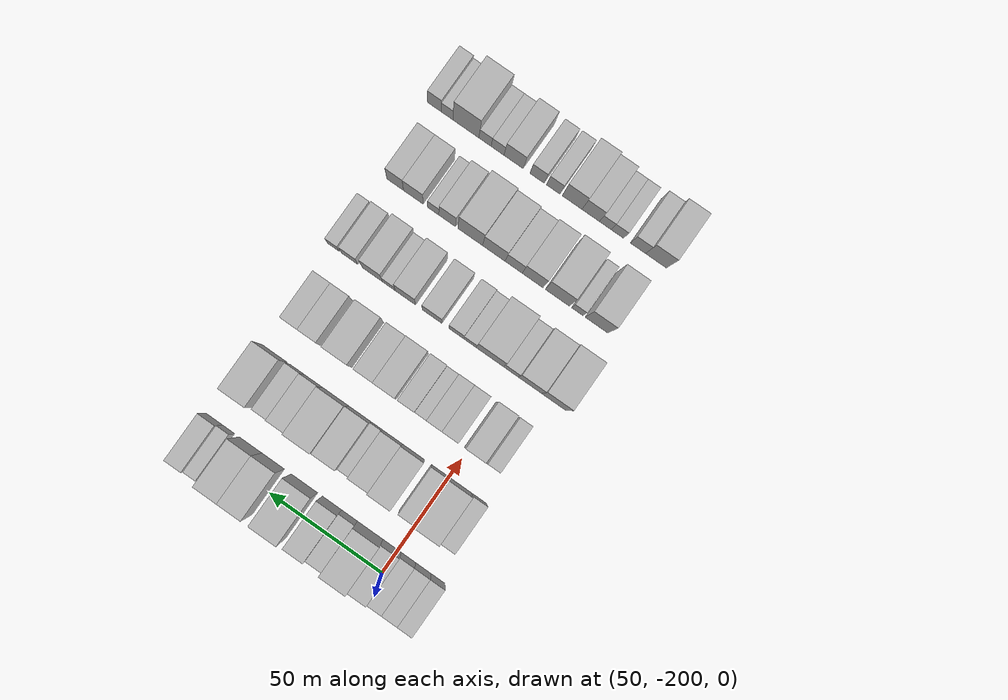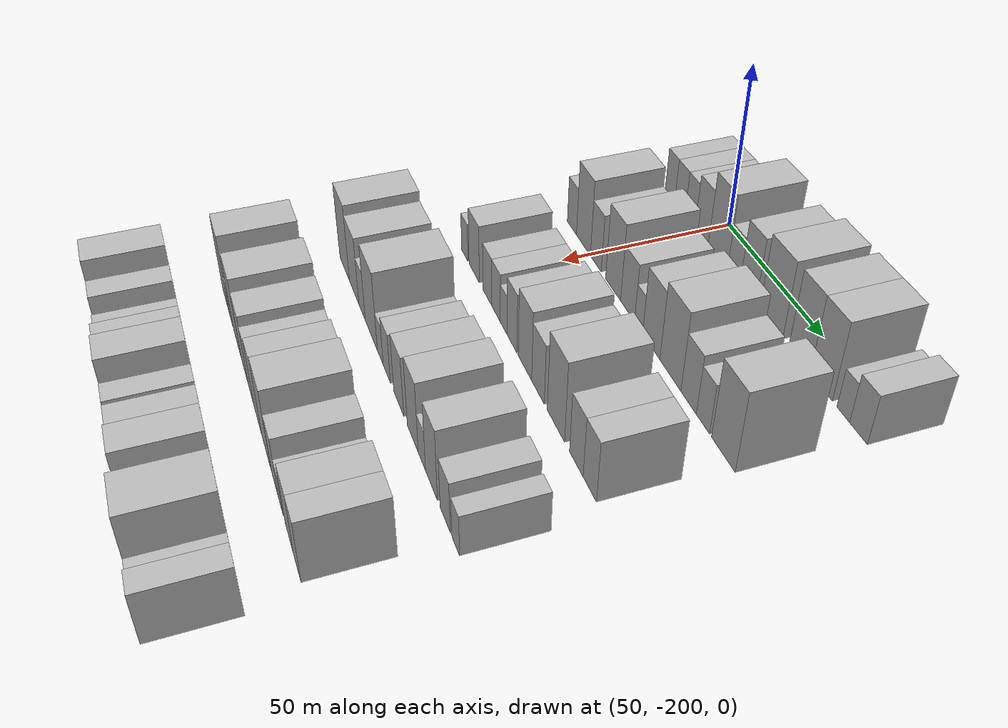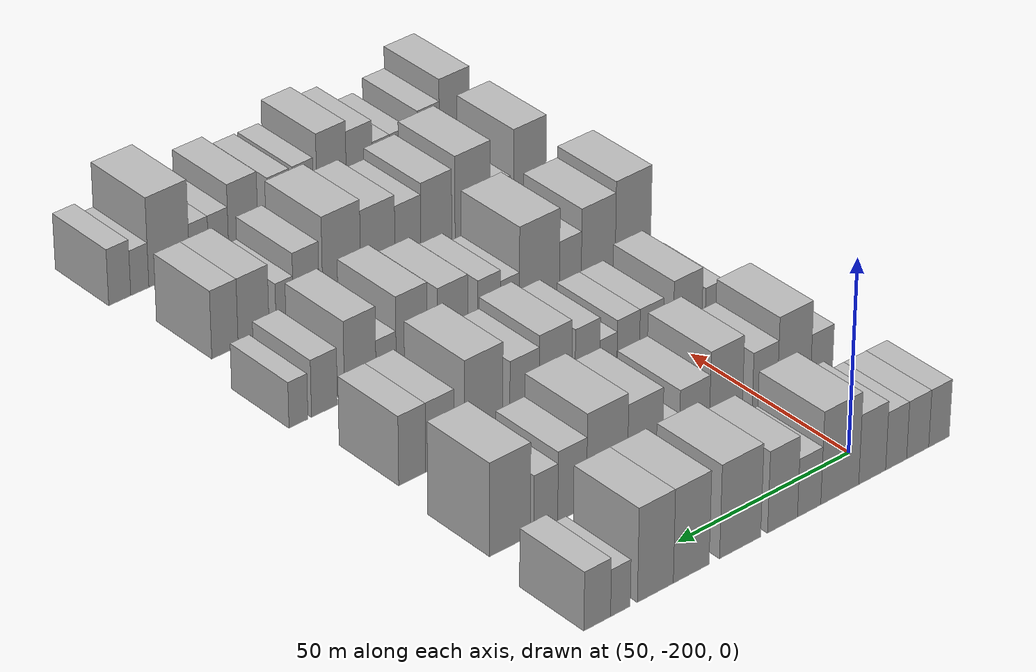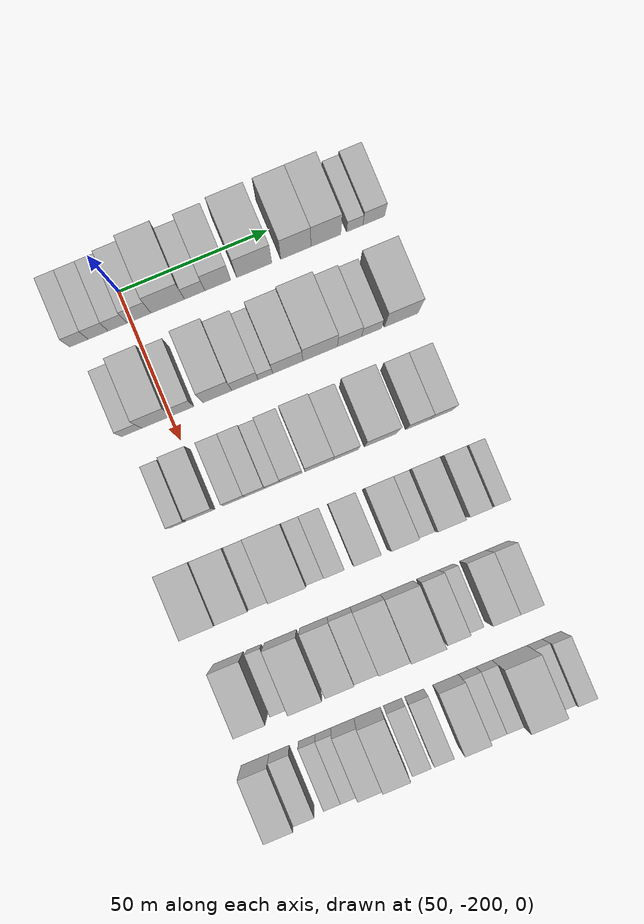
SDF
<sdf version="1.6">
 <world name="default">
  <model name="building_35">
   <static>1</static>
   <pose>50.0000 -217.4866 0 0.000000 0.000000 0.000000</pose>
   <link name="link">
    <pose>0 0 7.50 0 0 0</pose>
    <collision name="collision"><geometry><box><size>20.0000 6.2582 15.0000</size></box></geometry></collision>
    <visual name="visual">
     <cast_shadows>0</cast_shadows>
     <geometry><box><size>20.0000 6.2582 15.0000</size></box></geometry>
     <material>
      <script>
       <uri>model://HANNAS_wall/materials/scripts</uri>
       <uri>model://HANNAS_wall/materials/textures</uri>
       <name>vrc/HANNAS_wall</name>
      </script>
     </material>
    </visual>
   </link>
  </model>
  <model name="building_36">
   <static>1</static>
   <pose>50.0000 -211.0041 0 0.000000 0.000000 0.000000</pose>
   <link name="link">
    <pose>0 0 7.50 0 0 0</pose>
    <collision name="collision"><geometry><box><size>20.0000 6.7070 15.0000</size></box></geometry></collision>
    <visual name="visual">
     <cast_shadows>0</cast_shadows>
     <geometry><box><size>20.0000 6.7070 15.0000</size></box></geometry>
     <material>
      <script>
       <uri>model://HANNAS_wall/materials/scripts</uri>
       <uri>model://HANNAS_wall/materials/textures</uri>
       <name>vrc/HANNAS_wall</name>
      </script>
     </material>
    </visual>
   </link>
  </model>
  <model name="building_37">
   <static>1</static>
   <pose>50.0000 -204.4825 0 0.000000 0.000000 0.000000</pose>
   <link name="link">
    <pose>0 0 7.50 0 0 0</pose>
    <collision name="collision"><geometry><box><size>20.0000 6.3362 15.0000</size></box></geometry></collision>
    <visual name="visual">
     <cast_shadows>0</cast_shadows>
     <geometry><box><size>20.0000 6.3362 15.0000</size></box></geometry>
     <material>
      <script>
       <uri>model://HANNAS_wall/materials/scripts</uri>
       <uri>model://HANNAS_wall/materials/textures</uri>
       <name>vrc/HANNAS_wall</name>
      </script>
     </material>
    </visual>
   </link>
  </model>
  <model name="building_38">
   <static>1</static>
   <pose>50.0000 -197.2832 0 0.000000 0.000000 0.000000</pose>
   <link name="link">
    <pose>0 0 9.00 0 0 0</pose>
    <collision name="collision"><geometry><box><size>20.0000 8.0623 18.0000</size></box></geometry></collision>
    <visual name="visual">
     <cast_shadows>0</cast_shadows>
     <geometry><box><size>20.0000 8.0623 18.0000</size></box></geometry>
     <material>
      <script>
       <uri>model://HANNAS_wall/materials/scripts</uri>
       <uri>model://HANNAS_wall/materials/textures</uri>
       <name>vrc/HANNAS_wall</name>
      </script>
     </material>
    </visual>
   </link>
  </model>
  <model name="building_39">
   <static>1</static>
   <pose>50.0000 -187.6248 0 0.000000 0.000000 0.000000</pose>
   <link name="link">
    <pose>0 0 12.00 0 0 0</pose>
    <collision name="collision"><geometry><box><size>20.0000 11.2545 24.0000</size></box></geometry></collision>
    <visual name="visual">
     <cast_shadows>0</cast_shadows>
     <geometry><box><size>20.0000 11.2545 24.0000</size></box></geometry>
     <material>
      <script>
       <uri>model://HANNAS_wall/materials/scripts</uri>
       <uri>model://HANNAS_wall/materials/textures</uri>
       <name>vrc/HANNAS_wall</name>
      </script>
     </material>
    </visual>
   </link>
  </model>
  <model name="building_40">
   <static>1</static>
   <pose>50.0000 -178.5702 0 0.000000 0.000000 0.000000</pose>
   <link name="link">
    <pose>0 0 7.50 0 0 0</pose>
    <collision name="collision"><geometry><box><size>20.0000 6.8547 15.0000</size></box></geometry></collision>
    <visual name="visual">
     <cast_shadows>0</cast_shadows>
     <geometry><box><size>20.0000 6.8547 15.0000</size></box></geometry>
     <material>
      <script>
       <uri>model://HANNAS_wall/materials/scripts</uri>
       <uri>model://HANNAS_wall/materials/textures</uri>
       <name>vrc/HANNAS_wall</name>
      </script>
     </material>
    </visual>
   </link>
  </model>
  <model name="building_41">
   <static>1</static>
   <pose>50.0000 -170.7903 0 0.000000 0.000000 0.000000</pose>
   <link name="link">
    <pose>0 0 10.50 0 0 0</pose>
    <collision name="collision"><geometry><box><size>20.0000 8.7051 21.0000</size></box></geometry></collision>
    <visual name="visual">
     <cast_shadows>0</cast_shadows>
     <geometry><box><size>20.0000 8.7051 21.0000</size></box></geometry>
     <material>
      <script>
       <uri>model://HANNAS_wall/materials/scripts</uri>
       <uri>model://HANNAS_wall/materials/textures</uri>
       <name>vrc/HANNAS_wall</name>
      </script>
     </material>
    </visual>
   </link>
  </model>
  <model name="building_42">
   <static>1</static>
   <pose>50.0000 -158.5250 0 0.000000 0.000000 0.000000</pose>
   <link name="link">
    <pose>0 0 12.00 0 0 0</pose>
    <collision name="collision"><geometry><box><size>20.0000 11.8255 24.0000</size></box></geometry></collision>
    <visual name="visual">
     <cast_shadows>0</cast_shadows>
     <geometry><box><size>20.0000 11.8255 24.0000</size></box></geometry>
     <material>
      <script>
       <uri>model://HANNAS_wall/materials/scripts</uri>
       <uri>model://HANNAS_wall/materials/textures</uri>
       <name>vrc/HANNAS_wall</name>
      </script>
     </material>
    </visual>
   </link>
  </model>
  <model name="building_43">
   <static>1</static>
   <pose>50.0000 -144.5448 0 0.000000 0.000000 0.000000</pose>
   <link name="link">
    <pose>0 0 12.00 0 0 0</pose>
    <collision name="collision"><geometry><box><size>20.0000 10.1348 24.0000</size></box></geometry></collision>
    <visual name="visual">
     <cast_shadows>0</cast_shadows>
     <geometry><box><size>20.0000 10.1348 24.0000</size></box></geometry>
     <material>
      <script>
       <uri>model://HANNAS_wall/materials/scripts</uri>
       <uri>model://HANNAS_wall/materials/textures</uri>
       <name>vrc/HANNAS_wall</name>
      </script>
     </material>
    </visual>
   </link>
  </model>
  <model name="building_44">
   <static>1</static>
   <pose>50.0000 -134.4413 0 0.000000 0.000000 0.000000</pose>
   <link name="link">
    <pose>0 0 12.00 0 0 0</pose>
    <collision name="collision"><geometry><box><size>20.0000 10.0723 24.0000</size></box></geometry></collision>
    <visual name="visual">
     <cast_shadows>0</cast_shadows>
     <geometry><box><size>20.0000 10.0723 24.0000</size></box></geometry>
     <material>
      <script>
       <uri>model://HANNAS_wall/materials/scripts</uri>
       <uri>model://HANNAS_wall/materials/textures</uri>
       <name>vrc/HANNAS_wall</name>
      </script>
     </material>
    </visual>
   </link>
  </model>
  <model name="building_45">
   <static>1</static>
   <pose>50.0000 -124.6807 0 0.000000 0.000000 0.000000</pose>
   <link name="link">
    <pose>0 0 6.00 0 0 0</pose>
    <collision name="collision"><geometry><box><size>20.0000 5.4487 12.0000</size></box></geometry></collision>
    <visual name="visual">
     <cast_shadows>0</cast_shadows>
     <geometry><box><size>20.0000 5.4487 12.0000</size></box></geometry>
     <material>
      <script>
       <uri>model://HANNAS_wall/materials/scripts</uri>
       <uri>model://HANNAS_wall/materials/textures</uri>
       <name>vrc/HANNAS_wall</name>
      </script>
     </material>
    </visual>
   </link>
  </model>
  <model name="building_46">
   <static>1</static>
   <pose>50.0000 -118.2756 0 0.000000 0.000000 0.000000</pose>
   <link name="link">
    <pose>0 0 7.50 0 0 0</pose>
    <collision name="collision"><geometry><box><size>20.0000 7.3616 15.0000</size></box></geometry></collision>
    <visual name="visual">
     <cast_shadows>0</cast_shadows>
     <geometry><box><size>20.0000 7.3616 15.0000</size></box></geometry>
     <material>
      <script>
       <uri>model://HANNAS_wall/materials/scripts</uri>
       <uri>model://HANNAS_wall/materials/textures</uri>
       <name>vrc/HANNAS_wall</name>
      </script>
     </material>
    </visual>
   </link>
  </model>
  <model name="building_156">
   <static>1</static>
   <pose>82.0000 -213.0243 0 0.000000 0.000000 0.000000</pose>
   <link name="link">
    <pose>0 0 7.50 0 0 0</pose>
    <collision name="collision"><geometry><box><size>20.0000 6.7097 15.0000</size></box></geometry></collision>
    <visual name="visual">
     <cast_shadows>0</cast_shadows>
     <geometry><box><size>20.0000 6.7097 15.0000</size></box></geometry>
     <material>
      <script>
       <uri>model://HANNAS_wall/materials/scripts</uri>
       <uri>model://HANNAS_wall/materials/textures</uri>
       <name>vrc/HANNAS_wall</name>
      </script>
     </material>
    </visual>
   </link>
  </model>
  <model name="building_157">
   <static>1</static>
   <pose>82.0000 -204.6348 0 0.000000 0.000000 0.000000</pose>
   <link name="link">
    <pose>0 0 12.00 0 0 0</pose>
    <collision name="collision"><geometry><box><size>20.0000 10.0692 24.0000</size></box></geometry></collision>
    <visual name="visual">
     <cast_shadows>0</cast_shadows>
     <geometry><box><size>20.0000 10.0692 24.0000</size></box></geometry>
     <material>
      <script>
       <uri>model://HANNAS_wall/materials/scripts</uri>
       <uri>model://HANNAS_wall/materials/textures</uri>
       <name>vrc/HANNAS_wall</name>
      </script>
     </material>
    </visual>
   </link>
  </model>
  <model name="building_158">
   <static>1</static>
   <pose>82.0000 -195.8548 0 0.000000 0.000000 0.000000</pose>
   <link name="link">
    <pose>0 0 9.00 0 0 0</pose>
    <collision name="collision"><geometry><box><size>20.0000 7.4910 18.0000</size></box></geometry></collision>
    <visual name="visual">
     <cast_shadows>0</cast_shadows>
     <geometry><box><size>20.0000 7.4910 18.0000</size></box></geometry>
     <material>
      <script>
       <uri>model://HANNAS_wall/materials/scripts</uri>
       <uri>model://HANNAS_wall/materials/textures</uri>
       <name>vrc/HANNAS_wall</name>
      </script>
     </material>
    </visual>
   </link>
  </model>
  <model name="building_159">
   <static>1</static>
   <pose>82.0000 -184.2262 0 0.000000 0.000000 0.000000</pose>
   <link name="link">
    <pose>0 0 12.00 0 0 0</pose>
    <collision name="collision"><geometry><box><size>20.0000 9.7662 24.0000</size></box></geometry></collision>
    <visual name="visual">
     <cast_shadows>0</cast_shadows>
     <geometry><box><size>20.0000 9.7662 24.0000</size></box></geometry>
     <material>
      <script>
       <uri>model://HANNAS_wall/materials/scripts</uri>
       <uri>model://HANNAS_wall/materials/textures</uri>
       <name>vrc/HANNAS_wall</name>
      </script>
     </material>
    </visual>
   </link>
  </model>
  <model name="building_160">
   <static>1</static>
   <pose>82.0000 -174.9498 0 0.000000 0.000000 0.000000</pose>
   <link name="link">
    <pose>0 0 9.00 0 0 0</pose>
    <collision name="collision"><geometry><box><size>20.0000 8.7865 18.0000</size></box></geometry></collision>
    <visual name="visual">
     <cast_shadows>0</cast_shadows>
     <geometry><box><size>20.0000 8.7865 18.0000</size></box></geometry>
     <material>
      <script>
       <uri>model://HANNAS_wall/materials/scripts</uri>
       <uri>model://HANNAS_wall/materials/textures</uri>
       <name>vrc/HANNAS_wall</name>
      </script>
     </material>
    </visual>
   </link>
  </model>
  <model name="building_161">
   <static>1</static>
   <pose>82.0000 -168.1094 0 0.000000 0.000000 0.000000</pose>
   <link name="link">
    <pose>0 0 6.00 0 0 0</pose>
    <collision name="collision"><geometry><box><size>20.0000 4.8943 12.0000</size></box></geometry></collision>
    <visual name="visual">
     <cast_shadows>0</cast_shadows>
     <geometry><box><size>20.0000 4.8943 12.0000</size></box></geometry>
     <material>
      <script>
       <uri>model://HANNAS_wall/materials/scripts</uri>
       <uri>model://HANNAS_wall/materials/textures</uri>
       <name>vrc/HANNAS_wall</name>
      </script>
     </material>
    </visual>
   </link>
  </model>
  <model name="building_162">
   <static>1</static>
   <pose>82.0000 -160.6209 0 0.000000 0.000000 0.000000</pose>
   <link name="link">
    <pose>0 0 10.50 0 0 0</pose>
    <collision name="collision"><geometry><box><size>20.0000 10.0827 21.0000</size></box></geometry></collision>
    <visual name="visual">
     <cast_shadows>0</cast_shadows>
     <geometry><box><size>20.0000 10.0827 21.0000</size></box></geometry>
     <material>
      <script>
       <uri>model://HANNAS_wall/materials/scripts</uri>
       <uri>model://HANNAS_wall/materials/textures</uri>
       <name>vrc/HANNAS_wall</name>
      </script>
     </material>
    </visual>
   </link>
  </model>
  <model name="building_163">
   <static>1</static>
   <pose>82.0000 -149.7495 0 0.000000 0.000000 0.000000</pose>
   <link name="link">
    <pose>0 0 12.00 0 0 0</pose>
    <collision name="collision"><geometry><box><size>20.0000 11.6601 24.0000</size></box></geometry></collision>
    <visual name="visual">
     <cast_shadows>0</cast_shadows>
     <geometry><box><size>20.0000 11.6601 24.0000</size></box></geometry>
     <material>
      <script>
       <uri>model://HANNAS_wall/materials/scripts</uri>
       <uri>model://HANNAS_wall/materials/textures</uri>
       <name>vrc/HANNAS_wall</name>
      </script>
     </material>
    </visual>
   </link>
  </model>
  <model name="building_164">
   <static>1</static>
   <pose>82.0000 -139.8485 0 0.000000 0.000000 0.000000</pose>
   <link name="link">
    <pose>0 0 9.00 0 0 0</pose>
    <collision name="collision"><geometry><box><size>20.0000 8.1419 18.0000</size></box></geometry></collision>
    <visual name="visual">
     <cast_shadows>0</cast_shadows>
     <geometry><box><size>20.0000 8.1419 18.0000</size></box></geometry>
     <material>
      <script>
       <uri>model://HANNAS_wall/materials/scripts</uri>
       <uri>model://HANNAS_wall/materials/textures</uri>
       <name>vrc/HANNAS_wall</name>
      </script>
     </material>
    </visual>
   </link>
  </model>
  <model name="building_165">
   <static>1</static>
   <pose>82.0000 -132.4427 0 0.000000 0.000000 0.000000</pose>
   <link name="link">
    <pose>0 0 7.50 0 0 0</pose>
    <collision name="collision"><geometry><box><size>20.0000 6.6697 15.0000</size></box></geometry></collision>
    <visual name="visual">
     <cast_shadows>0</cast_shadows>
     <geometry><box><size>20.0000 6.6697 15.0000</size></box></geometry>
     <material>
      <script>
       <uri>model://HANNAS_wall/materials/scripts</uri>
       <uri>model://HANNAS_wall/materials/textures</uri>
       <name>vrc/HANNAS_wall</name>
      </script>
     </material>
    </visual>
   </link>
  </model>
  <model name="building_166">
   <static>1</static>
   <pose>82.0000 -122.4352 0 0.000000 0.000000 0.000000</pose>
   <link name="link">
    <pose>0 0 12.00 0 0 0</pose>
    <collision name="collision"><geometry><box><size>20.0000 11.3452 24.0000</size></box></geometry></collision>
    <visual name="visual">
     <cast_shadows>0</cast_shadows>
     <geometry><box><size>20.0000 11.3452 24.0000</size></box></geometry>
     <material>
      <script>
       <uri>model://HANNAS_wall/materials/scripts</uri>
       <uri>model://HANNAS_wall/materials/textures</uri>
       <name>vrc/HANNAS_wall</name>
      </script>
     </material>
    </visual>
   </link>
  </model>
  <model name="building_271">
   <static>1</static>
   <pose>114.0000 -210.7278 0 0.000000 0.000000 0.000000</pose>
   <link name="link">
    <pose>0 0 6.00 0 0 0</pose>
    <collision name="collision"><geometry><box><size>20.0000 5.5401 12.0000</size></box></geometry></collision>
    <visual name="visual">
     <cast_shadows>0</cast_shadows>
     <geometry><box><size>20.0000 5.5401 12.0000</size></box></geometry>
     <material>
      <script>
       <uri>model://HANNAS_wall/materials/scripts</uri>
       <uri>model://HANNAS_wall/materials/textures</uri>
       <name>vrc/HANNAS_wall</name>
      </script>
     </material>
    </visual>
   </link>
  </model>
  <model name="building_272">
   <static>1</static>
   <pose>114.0000 -202.6160 0 0.000000 0.000000 0.000000</pose>
   <link name="link">
    <pose>0 0 9.00 0 0 0</pose>
    <collision name="collision"><geometry><box><size>20.0000 8.6835 18.0000</size></box></geometry></collision>
    <visual name="visual">
     <cast_shadows>0</cast_shadows>
     <geometry><box><size>20.0000 8.6835 18.0000</size></box></geometry>
     <material>
      <script>
       <uri>model://HANNAS_wall/materials/scripts</uri>
       <uri>model://HANNAS_wall/materials/textures</uri>
       <name>vrc/HANNAS_wall</name>
      </script>
     </material>
    </visual>
   </link>
  </model>
  <model name="building_273">
   <static>1</static>
   <pose>114.0000 -191.7306 0 0.000000 0.000000 0.000000</pose>
   <link name="link">
    <pose>0 0 7.50 0 0 0</pose>
    <collision name="collision"><geometry><box><size>20.0000 7.0872 15.0000</size></box></geometry></collision>
    <visual name="visual">
     <cast_shadows>0</cast_shadows>
     <geometry><box><size>20.0000 7.0872 15.0000</size></box></geometry>
     <material>
      <script>
       <uri>model://HANNAS_wall/materials/scripts</uri>
       <uri>model://HANNAS_wall/materials/textures</uri>
       <name>vrc/HANNAS_wall</name>
      </script>
     </material>
    </visual>
   </link>
  </model>
  <model name="building_274">
   <static>1</static>
   <pose>114.0000 -184.8368 0 0.000000 0.000000 0.000000</pose>
   <link name="link">
    <pose>0 0 7.50 0 0 0</pose>
    <collision name="collision"><geometry><box><size>20.0000 6.7005 15.0000</size></box></geometry></collision>
    <visual name="visual">
     <cast_shadows>0</cast_shadows>
     <geometry><box><size>20.0000 6.7005 15.0000</size></box></geometry>
     <material>
      <script>
       <uri>model://HANNAS_wall/materials/scripts</uri>
       <uri>model://HANNAS_wall/materials/textures</uri>
       <name>vrc/HANNAS_wall</name>
      </script>
     </material>
    </visual>
   </link>
  </model>
  <model name="building_275">
   <static>1</static>
   <pose>114.0000 -178.9453 0 0.000000 0.000000 0.000000</pose>
   <link name="link">
    <pose>0 0 6.00 0 0 0</pose>
    <collision name="collision"><geometry><box><size>20.0000 5.0824 12.0000</size></box></geometry></collision>
    <visual name="visual">
     <cast_shadows>0</cast_shadows>
     <geometry><box><size>20.0000 5.0824 12.0000</size></box></geometry>
     <material>
      <script>
       <uri>model://HANNAS_wall/materials/scripts</uri>
       <uri>model://HANNAS_wall/materials/textures</uri>
       <name>vrc/HANNAS_wall</name>
      </script>
     </material>
    </visual>
   </link>
  </model>
  <model name="building_276">
   <static>1</static>
   <pose>114.0000 -172.7755 0 0.000000 0.000000 0.000000</pose>
   <link name="link">
    <pose>0 0 9.00 0 0 0</pose>
    <collision name="collision"><geometry><box><size>20.0000 7.2572 18.0000</size></box></geometry></collision>
    <visual name="visual">
     <cast_shadows>0</cast_shadows>
     <geometry><box><size>20.0000 7.2572 18.0000</size></box></geometry>
     <material>
      <script>
       <uri>model://HANNAS_wall/materials/scripts</uri>
       <uri>model://HANNAS_wall/materials/textures</uri>
       <name>vrc/HANNAS_wall</name>
      </script>
     </material>
    </visual>
   </link>
  </model>
  <model name="building_277">
   <static>1</static>
   <pose>114.0000 -163.4434 0 0.000000 0.000000 0.000000</pose>
   <link name="link">
    <pose>0 0 10.50 0 0 0</pose>
    <collision name="collision"><geometry><box><size>20.0000 9.4072 21.0000</size></box></geometry></collision>
    <visual name="visual">
     <cast_shadows>0</cast_shadows>
     <geometry><box><size>20.0000 9.4072 21.0000</size></box></geometry>
     <material>
      <script>
       <uri>model://HANNAS_wall/materials/scripts</uri>
       <uri>model://HANNAS_wall/materials/textures</uri>
       <name>vrc/HANNAS_wall</name>
      </script>
     </material>
    </visual>
   </link>
  </model>
  <model name="building_278">
   <static>1</static>
   <pose>114.0000 -154.5043 0 0.000000 0.000000 0.000000</pose>
   <link name="link">
    <pose>0 0 9.00 0 0 0</pose>
    <collision name="collision"><geometry><box><size>20.0000 8.4709 18.0000</size></box></geometry></collision>
    <visual name="visual">
     <cast_shadows>0</cast_shadows>
     <geometry><box><size>20.0000 8.4709 18.0000</size></box></geometry>
     <material>
      <script>
       <uri>model://HANNAS_wall/materials/scripts</uri>
       <uri>model://HANNAS_wall/materials/textures</uri>
       <name>vrc/HANNAS_wall</name>
      </script>
     </material>
    </visual>
   </link>
  </model>
  <model name="building_279">
   <static>1</static>
   <pose>114.0000 -142.8248 0 0.000000 0.000000 0.000000</pose>
   <link name="link">
    <pose>0 0 12.00 0 0 0</pose>
    <collision name="collision"><geometry><box><size>20.0000 10.8882 24.0000</size></box></geometry></collision>
    <visual name="visual">
     <cast_shadows>0</cast_shadows>
     <geometry><box><size>20.0000 10.8882 24.0000</size></box></geometry>
     <material>
      <script>
       <uri>model://HANNAS_wall/materials/scripts</uri>
       <uri>model://HANNAS_wall/materials/textures</uri>
       <name>vrc/HANNAS_wall</name>
      </script>
     </material>
    </visual>
   </link>
  </model>
  <model name="building_280">
   <static>1</static>
   <pose>114.0000 -130.3665 0 0.000000 0.000000 0.000000</pose>
   <link name="link">
    <pose>0 0 9.00 0 0 0</pose>
    <collision name="collision"><geometry><box><size>20.0000 8.0283 18.0000</size></box></geometry></collision>
    <visual name="visual">
     <cast_shadows>0</cast_shadows>
     <geometry><box><size>20.0000 8.0283 18.0000</size></box></geometry>
     <material>
      <script>
       <uri>model://HANNAS_wall/materials/scripts</uri>
       <uri>model://HANNAS_wall/materials/textures</uri>
       <name>vrc/HANNAS_wall</name>
      </script>
     </material>
    </visual>
   </link>
  </model>
  <model name="building_281">
   <static>1</static>
   <pose>114.0000 -122.5780 0 0.000000 0.000000 0.000000</pose>
   <link name="link">
    <pose>0 0 9.00 0 0 0</pose>
    <collision name="collision"><geometry><box><size>20.0000 7.5489 18.0000</size></box></geometry></collision>
    <visual name="visual">
     <cast_shadows>0</cast_shadows>
     <geometry><box><size>20.0000 7.5489 18.0000</size></box></geometry>
     <material>
      <script>
       <uri>model://HANNAS_wall/materials/scripts</uri>
       <uri>model://HANNAS_wall/materials/textures</uri>
       <name>vrc/HANNAS_wall</name>
      </script>
     </material>
    </visual>
   </link>
  </model>
  <model name="building_391">
   <static>1</static>
   <pose>146.0000 -215.3530 0 0.000000 0.000000 0.000000</pose>
   <link name="link">
    <pose>0 0 12.00 0 0 0</pose>
    <collision name="collision"><geometry><box><size>20.0000 10.8899 24.0000</size></box></geometry></collision>
    <visual name="visual">
     <cast_shadows>0</cast_shadows>
     <geometry><box><size>20.0000 10.8899 24.0000</size></box></geometry>
     <material>
      <script>
       <uri>model://HANNAS_wall/materials/scripts</uri>
       <uri>model://HANNAS_wall/materials/textures</uri>
       <name>vrc/HANNAS_wall</name>
      </script>
     </material>
    </visual>
   </link>
  </model>
  <model name="building_392">
   <static>1</static>
   <pose>146.0000 -204.7414 0 0.000000 0.000000 0.000000</pose>
   <link name="link">
    <pose>0 0 10.50 0 0 0</pose>
    <collision name="collision"><geometry><box><size>20.0000 10.3334 21.0000</size></box></geometry></collision>
    <visual name="visual">
     <cast_shadows>0</cast_shadows>
     <geometry><box><size>20.0000 10.3334 21.0000</size></box></geometry>
     <material>
      <script>
       <uri>model://HANNAS_wall/materials/scripts</uri>
       <uri>model://HANNAS_wall/materials/textures</uri>
       <name>vrc/HANNAS_wall</name>
      </script>
     </material>
    </visual>
   </link>
  </model>
  <model name="building_393">
   <static>1</static>
   <pose>146.0000 -196.2907 0 0.000000 0.000000 0.000000</pose>
   <link name="link">
    <pose>0 0 7.50 0 0 0</pose>
    <collision name="collision"><geometry><box><size>20.0000 6.5680 15.0000</size></box></geometry></collision>
    <visual name="visual">
     <cast_shadows>0</cast_shadows>
     <geometry><box><size>20.0000 6.5680 15.0000</size></box></geometry>
     <material>
      <script>
       <uri>model://HANNAS_wall/materials/scripts</uri>
       <uri>model://HANNAS_wall/materials/textures</uri>
       <name>vrc/HANNAS_wall</name>
      </script>
     </material>
    </visual>
   </link>
  </model>
  <model name="building_394">
   <static>1</static>
   <pose>146.0000 -187.0094 0 0.000000 0.000000 0.000000</pose>
   <link name="link">
    <pose>0 0 12.00 0 0 0</pose>
    <collision name="collision"><geometry><box><size>20.0000 11.9946 24.0000</size></box></geometry></collision>
    <visual name="visual">
     <cast_shadows>0</cast_shadows>
     <geometry><box><size>20.0000 11.9946 24.0000</size></box></geometry>
     <material>
      <script>
       <uri>model://HANNAS_wall/materials/scripts</uri>
       <uri>model://HANNAS_wall/materials/textures</uri>
       <name>vrc/HANNAS_wall</name>
      </script>
     </material>
    </visual>
   </link>
  </model>
  <model name="building_395">
   <static>1</static>
   <pose>146.0000 -178.2110 0 0.000000 0.000000 0.000000</pose>
   <link name="link">
    <pose>0 0 6.00 0 0 0</pose>
    <collision name="collision"><geometry><box><size>20.0000 5.6023 12.0000</size></box></geometry></collision>
    <visual name="visual">
     <cast_shadows>0</cast_shadows>
     <geometry><box><size>20.0000 5.6023 12.0000</size></box></geometry>
     <material>
      <script>
       <uri>model://HANNAS_wall/materials/scripts</uri>
       <uri>model://HANNAS_wall/materials/textures</uri>
       <name>vrc/HANNAS_wall</name>
      </script>
     </material>
    </visual>
   </link>
  </model>
  <model name="building_396">
   <static>1</static>
   <pose>146.0000 -172.0762 0 0.000000 0.000000 0.000000</pose>
   <link name="link">
    <pose>0 0 7.50 0 0 0</pose>
    <collision name="collision"><geometry><box><size>20.0000 6.6673 15.0000</size></box></geometry></collision>
    <visual name="visual">
     <cast_shadows>0</cast_shadows>
     <geometry><box><size>20.0000 6.6673 15.0000</size></box></geometry>
     <material>
      <script>
       <uri>model://HANNAS_wall/materials/scripts</uri>
       <uri>model://HANNAS_wall/materials/textures</uri>
       <name>vrc/HANNAS_wall</name>
      </script>
     </material>
    </visual>
   </link>
  </model>
  <model name="building_397">
   <static>1</static>
   <pose>146.0000 -161.3715 0 0.000000 0.000000 0.000000</pose>
   <link name="link">
    <pose>0 0 9.00 0 0 0</pose>
    <collision name="collision"><geometry><box><size>20.0000 8.7420 18.0000</size></box></geometry></collision>
    <visual name="visual">
     <cast_shadows>0</cast_shadows>
     <geometry><box><size>20.0000 8.7420 18.0000</size></box></geometry>
     <material>
      <script>
       <uri>model://HANNAS_wall/materials/scripts</uri>
       <uri>model://HANNAS_wall/materials/textures</uri>
       <name>vrc/HANNAS_wall</name>
      </script>
     </material>
    </visual>
   </link>
  </model>
  <model name="building_398">
   <static>1</static>
   <pose>146.0000 -149.5007 0 0.000000 0.000000 0.000000</pose>
   <link name="link">
    <pose>0 0 10.50 0 0 0</pose>
    <collision name="collision"><geometry><box><size>20.0000 8.9995 21.0000</size></box></geometry></collision>
    <visual name="visual">
     <cast_shadows>0</cast_shadows>
     <geometry><box><size>20.0000 8.9995 21.0000</size></box></geometry>
     <material>
      <script>
       <uri>model://HANNAS_wall/materials/scripts</uri>
       <uri>model://HANNAS_wall/materials/textures</uri>
       <name>vrc/HANNAS_wall</name>
      </script>
     </material>
    </visual>
   </link>
  </model>
  <model name="building_399">
   <static>1</static>
   <pose>146.0000 -142.1127 0 0.000000 0.000000 0.000000</pose>
   <link name="link">
    <pose>0 0 6.00 0 0 0</pose>
    <collision name="collision"><geometry><box><size>20.0000 5.7765 12.0000</size></box></geometry></collision>
    <visual name="visual">
     <cast_shadows>0</cast_shadows>
     <geometry><box><size>20.0000 5.7765 12.0000</size></box></geometry>
     <material>
      <script>
       <uri>model://HANNAS_wall/materials/scripts</uri>
       <uri>model://HANNAS_wall/materials/textures</uri>
       <name>vrc/HANNAS_wall</name>
      </script>
     </material>
    </visual>
   </link>
  </model>
  <model name="building_400">
   <static>1</static>
   <pose>146.0000 -134.7235 0 0.000000 0.000000 0.000000</pose>
   <link name="link">
    <pose>0 0 10.50 0 0 0</pose>
    <collision name="collision"><geometry><box><size>20.0000 9.0020 21.0000</size></box></geometry></collision>
    <visual name="visual">
     <cast_shadows>0</cast_shadows>
     <geometry><box><size>20.0000 9.0020 21.0000</size></box></geometry>
     <material>
      <script>
       <uri>model://HANNAS_wall/materials/scripts</uri>
       <uri>model://HANNAS_wall/materials/textures</uri>
       <name>vrc/HANNAS_wall</name>
      </script>
     </material>
    </visual>
   </link>
  </model>
  <model name="building_401">
   <static>1</static>
   <pose>146.0000 -124.5588 0 0.000000 0.000000 0.000000</pose>
   <link name="link">
    <pose>0 0 7.50 0 0 0</pose>
    <collision name="collision"><geometry><box><size>20.0000 7.3274 15.0000</size></box></geometry></collision>
    <visual name="visual">
     <cast_shadows>0</cast_shadows>
     <geometry><box><size>20.0000 7.3274 15.0000</size></box></geometry>
     <material>
      <script>
       <uri>model://HANNAS_wall/materials/scripts</uri>
       <uri>model://HANNAS_wall/materials/textures</uri>
       <name>vrc/HANNAS_wall</name>
      </script>
     </material>
    </visual>
   </link>
  </model>
  <model name="building_402">
   <static>1</static>
   <pose>146.0000 -117.2465 0 0.000000 0.000000 0.000000</pose>
   <link name="link">
    <pose>0 0 6.00 0 0 0</pose>
    <collision name="collision"><geometry><box><size>20.0000 5.2971 12.0000</size></box></geometry></collision>
    <visual name="visual">
     <cast_shadows>0</cast_shadows>
     <geometry><box><size>20.0000 5.2971 12.0000</size></box></geometry>
     <material>
      <script>
       <uri>model://HANNAS_wall/materials/scripts</uri>
       <uri>model://HANNAS_wall/materials/textures</uri>
       <name>vrc/HANNAS_wall</name>
      </script>
     </material>
    </visual>
   </link>
  </model>
  <model name="building_513">
   <static>1</static>
   <pose>178.0000 -212.1692 0 0.000000 0.000000 0.000000</pose>
   <link name="link">
    <pose>0 0 12.00 0 0 0</pose>
    <collision name="collision"><geometry><box><size>20.0000 9.9843 24.0000</size></box></geometry></collision>
    <visual name="visual">
     <cast_shadows>0</cast_shadows>
     <geometry><box><size>20.0000 9.9843 24.0000</size></box></geometry>
     <material>
      <script>
       <uri>model://HANNAS_wall/materials/scripts</uri>
       <uri>model://HANNAS_wall/materials/textures</uri>
       <name>vrc/HANNAS_wall</name>
      </script>
     </material>
    </visual>
   </link>
  </model>
  <model name="building_514">
   <static>1</static>
   <pose>178.0000 -203.6565 0 0.000000 0.000000 0.000000</pose>
   <link name="link">
    <pose>0 0 6.00 0 0 0</pose>
    <collision name="collision"><geometry><box><size>20.0000 5.0412 12.0000</size></box></geometry></collision>
    <visual name="visual">
     <cast_shadows>0</cast_shadows>
     <geometry><box><size>20.0000 5.0412 12.0000</size></box></geometry>
     <material>
      <script>
       <uri>model://HANNAS_wall/materials/scripts</uri>
       <uri>model://HANNAS_wall/materials/textures</uri>
       <name>vrc/HANNAS_wall</name>
      </script>
     </material>
    </visual>
   </link>
  </model>
  <model name="building_515">
   <static>1</static>
   <pose>178.0000 -194.7805 0 0.000000 0.000000 0.000000</pose>
   <link name="link">
    <pose>0 0 12.00 0 0 0</pose>
    <collision name="collision"><geometry><box><size>20.0000 10.7107 24.0000</size></box></geometry></collision>
    <visual name="visual">
     <cast_shadows>0</cast_shadows>
     <geometry><box><size>20.0000 10.7107 24.0000</size></box></geometry>
     <material>
      <script>
       <uri>model://HANNAS_wall/materials/scripts</uri>
       <uri>model://HANNAS_wall/materials/textures</uri>
       <name>vrc/HANNAS_wall</name>
      </script>
     </material>
    </visual>
   </link>
  </model>
  <model name="building_516">
   <static>1</static>
   <pose>178.0000 -183.7984 0 0.000000 0.000000 0.000000</pose>
   <link name="link">
    <pose>0 0 10.50 0 0 0</pose>
    <collision name="collision"><geometry><box><size>20.0000 9.2534 21.0000</size></box></geometry></collision>
    <visual name="visual">
     <cast_shadows>0</cast_shadows>
     <geometry><box><size>20.0000 9.2534 21.0000</size></box></geometry>
     <material>
      <script>
       <uri>model://HANNAS_wall/materials/scripts</uri>
       <uri>model://HANNAS_wall/materials/textures</uri>
       <name>vrc/HANNAS_wall</name>
      </script>
     </material>
    </visual>
   </link>
  </model>
  <model name="building_517">
   <static>1</static>
   <pose>178.0000 -175.3484 0 0.000000 0.000000 0.000000</pose>
   <link name="link">
    <pose>0 0 9.00 0 0 0</pose>
    <collision name="collision"><geometry><box><size>20.0000 7.6465 18.0000</size></box></geometry></collision>
    <visual name="visual">
     <cast_shadows>0</cast_shadows>
     <geometry><box><size>20.0000 7.6465 18.0000</size></box></geometry>
     <material>
      <script>
       <uri>model://HANNAS_wall/materials/scripts</uri>
       <uri>model://HANNAS_wall/materials/textures</uri>
       <name>vrc/HANNAS_wall</name>
      </script>
     </material>
    </visual>
   </link>
  </model>
  <model name="building_518">
   <static>1</static>
   <pose>178.0000 -166.4658 0 0.000000 0.000000 0.000000</pose>
   <link name="link">
    <pose>0 0 10.50 0 0 0</pose>
    <collision name="collision"><geometry><box><size>20.0000 10.1187 21.0000</size></box></geometry></collision>
    <visual name="visual">
     <cast_shadows>0</cast_shadows>
     <geometry><box><size>20.0000 10.1187 21.0000</size></box></geometry>
     <material>
      <script>
       <uri>model://HANNAS_wall/materials/scripts</uri>
       <uri>model://HANNAS_wall/materials/textures</uri>
       <name>vrc/HANNAS_wall</name>
      </script>
     </material>
    </visual>
   </link>
  </model>
  <model name="building_519">
   <static>1</static>
   <pose>178.0000 -155.8590 0 0.000000 0.000000 0.000000</pose>
   <link name="link">
    <pose>0 0 12.00 0 0 0</pose>
    <collision name="collision"><geometry><box><size>20.0000 11.0950 24.0000</size></box></geometry></collision>
    <visual name="visual">
     <cast_shadows>0</cast_shadows>
     <geometry><box><size>20.0000 11.0950 24.0000</size></box></geometry>
     <material>
      <script>
       <uri>model://HANNAS_wall/materials/scripts</uri>
       <uri>model://HANNAS_wall/materials/textures</uri>
       <name>vrc/HANNAS_wall</name>
      </script>
     </material>
    </visual>
   </link>
  </model>
  <model name="building_520">
   <static>1</static>
   <pose>178.0000 -145.5660 0 0.000000 0.000000 0.000000</pose>
   <link name="link">
    <pose>0 0 9.00 0 0 0</pose>
    <collision name="collision"><geometry><box><size>20.0000 7.4910 18.0000</size></box></geometry></collision>
    <visual name="visual">
     <cast_shadows>0</cast_shadows>
     <geometry><box><size>20.0000 7.4910 18.0000</size></box></geometry>
     <material>
      <script>
       <uri>model://HANNAS_wall/materials/scripts</uri>
       <uri>model://HANNAS_wall/materials/textures</uri>
       <name>vrc/HANNAS_wall</name>
      </script>
     </material>
    </visual>
   </link>
  </model>
  <model name="building_521">
   <static>1</static>
   <pose>178.0000 -139.3151 0 0.000000 0.000000 0.000000</pose>
   <link name="link">
    <pose>0 0 6.00 0 0 0</pose>
    <collision name="collision"><geometry><box><size>20.0000 5.0107 12.0000</size></box></geometry></collision>
    <visual name="visual">
     <cast_shadows>0</cast_shadows>
     <geometry><box><size>20.0000 5.0107 12.0000</size></box></geometry>
     <material>
      <script>
       <uri>model://HANNAS_wall/materials/scripts</uri>
       <uri>model://HANNAS_wall/materials/textures</uri>
       <name>vrc/HANNAS_wall</name>
      </script>
     </material>
    </visual>
   </link>
  </model>
  <model name="building_522">
   <static>1</static>
   <pose>178.0000 -130.3945 0 0.000000 0.000000 0.000000</pose>
   <link name="link">
    <pose>0 0 9.00 0 0 0</pose>
    <collision name="collision"><geometry><box><size>20.0000 8.8306 18.0000</size></box></geometry></collision>
    <visual name="visual">
     <cast_shadows>0</cast_shadows>
     <geometry><box><size>20.0000 8.8306 18.0000</size></box></geometry>
     <material>
      <script>
       <uri>model://HANNAS_wall/materials/scripts</uri>
       <uri>model://HANNAS_wall/materials/textures</uri>
       <name>vrc/HANNAS_wall</name>
      </script>
     </material>
    </visual>
   </link>
  </model>
  <model name="building_523">
   <static>1</static>
   <pose>178.0000 -122.2526 0 0.000000 0.000000 0.000000</pose>
   <link name="link">
    <pose>0 0 9.00 0 0 0</pose>
    <collision name="collision"><geometry><box><size>20.0000 7.4533 18.0000</size></box></geometry></collision>
    <visual name="visual">
     <cast_shadows>0</cast_shadows>
     <geometry><box><size>20.0000 7.4533 18.0000</size></box></geometry>
     <material>
      <script>
       <uri>model://HANNAS_wall/materials/scripts</uri>
       <uri>model://HANNAS_wall/materials/textures</uri>
       <name>vrc/HANNAS_wall</name>
      </script>
     </material>
    </visual>
   </link>
  </model>
  <model name="building_621">
   <static>1</static>
   <pose>210.0000 -216.5872 0 0.000000 0.000000 0.000000</pose>
   <link name="link">
    <pose>0 0 10.50 0 0 0</pose>
    <collision name="collision"><geometry><box><size>20.0000 9.3035 21.0000</size></box></geometry></collision>
    <visual name="visual">
     <cast_shadows>0</cast_shadows>
     <geometry><box><size>20.0000 9.3035 21.0000</size></box></geometry>
     <material>
      <script>
       <uri>model://HANNAS_wall/materials/scripts</uri>
       <uri>model://HANNAS_wall/materials/textures</uri>
       <name>vrc/HANNAS_wall</name>
      </script>
     </material>
    </visual>
   </link>
  </model>
  <model name="building_622">
   <static>1</static>
   <pose>210.0000 -208.5691 0 0.000000 0.000000 0.000000</pose>
   <link name="link">
    <pose>0 0 7.50 0 0 0</pose>
    <collision name="collision"><geometry><box><size>20.0000 6.7326 15.0000</size></box></geometry></collision>
    <visual name="visual">
     <cast_shadows>0</cast_shadows>
     <geometry><box><size>20.0000 6.7326 15.0000</size></box></geometry>
     <material>
      <script>
       <uri>model://HANNAS_wall/materials/scripts</uri>
       <uri>model://HANNAS_wall/materials/textures</uri>
       <name>vrc/HANNAS_wall</name>
      </script>
     </material>
    </visual>
   </link>
  </model>
  <model name="building_623">
   <static>1</static>
   <pose>210.0000 -199.4696 0 0.000000 0.000000 0.000000</pose>
   <link name="link">
    <pose>0 0 6.00 0 0 0</pose>
    <collision name="collision"><geometry><box><size>20.0000 5.4664 12.0000</size></box></geometry></collision>
    <visual name="visual">
     <cast_shadows>0</cast_shadows>
     <geometry><box><size>20.0000 5.4664 12.0000</size></box></geometry>
     <material>
      <script>
       <uri>model://HANNAS_wall/materials/scripts</uri>
       <uri>model://HANNAS_wall/materials/textures</uri>
       <name>vrc/HANNAS_wall</name>
      </script>
     </material>
    </visual>
   </link>
  </model>
  <model name="building_624">
   <static>1</static>
   <pose>210.0000 -194.0772 0 0.000000 0.000000 0.000000</pose>
   <link name="link">
    <pose>0 0 6.00 0 0 0</pose>
    <collision name="collision"><geometry><box><size>20.0000 5.3185 12.0000</size></box></geometry></collision>
    <visual name="visual">
     <cast_shadows>0</cast_shadows>
     <geometry><box><size>20.0000 5.3185 12.0000</size></box></geometry>
     <material>
      <script>
       <uri>model://HANNAS_wall/materials/scripts</uri>
       <uri>model://HANNAS_wall/materials/textures</uri>
       <name>vrc/HANNAS_wall</name>
      </script>
     </material>
    </visual>
   </link>
  </model>
  <model name="building_625">
   <static>1</static>
   <pose>210.0000 -187.5091 0 0.000000 0.000000 0.000000</pose>
   <link name="link">
    <pose>0 0 9.00 0 0 0</pose>
    <collision name="collision"><geometry><box><size>20.0000 7.8176 18.0000</size></box></geometry></collision>
    <visual name="visual">
     <cast_shadows>0</cast_shadows>
     <geometry><box><size>20.0000 7.8176 18.0000</size></box></geometry>
     <material>
      <script>
       <uri>model://HANNAS_wall/materials/scripts</uri>
       <uri>model://HANNAS_wall/materials/textures</uri>
       <name>vrc/HANNAS_wall</name>
      </script>
     </material>
    </visual>
   </link>
  </model>
  <model name="building_626">
   <static>1</static>
   <pose>210.0000 -179.1880 0 0.000000 0.000000 0.000000</pose>
   <link name="link">
    <pose>0 0 10.50 0 0 0</pose>
    <collision name="collision"><geometry><box><size>20.0000 8.8247 21.0000</size></box></geometry></collision>
    <visual name="visual">
     <cast_shadows>0</cast_shadows>
     <geometry><box><size>20.0000 8.8247 21.0000</size></box></geometry>
     <material>
      <script>
       <uri>model://HANNAS_wall/materials/scripts</uri>
       <uri>model://HANNAS_wall/materials/textures</uri>
       <name>vrc/HANNAS_wall</name>
      </script>
     </material>
    </visual>
   </link>
  </model>
  <model name="building_627">
   <static>1</static>
   <pose>210.0000 -170.7298 0 0.000000 0.000000 0.000000</pose>
   <link name="link">
    <pose>0 0 7.50 0 0 0</pose>
    <collision name="collision"><geometry><box><size>20.0000 6.0916 15.0000</size></box></geometry></collision>
    <visual name="visual">
     <cast_shadows>0</cast_shadows>
     <geometry><box><size>20.0000 6.0916 15.0000</size></box></geometry>
     <material>
      <script>
       <uri>model://HANNAS_wall/materials/scripts</uri>
       <uri>model://HANNAS_wall/materials/textures</uri>
       <name>vrc/HANNAS_wall</name>
      </script>
     </material>
    </visual>
   </link>
  </model>
  <model name="building_628">
   <static>1</static>
   <pose>210.0000 -163.4827 0 0.000000 0.000000 0.000000</pose>
   <link name="link">
    <pose>0 0 7.50 0 0 0</pose>
    <collision name="collision"><geometry><box><size>20.0000 6.4025 15.0000</size></box></geometry></collision>
    <visual name="visual">
     <cast_shadows>0</cast_shadows>
     <geometry><box><size>20.0000 6.4025 15.0000</size></box></geometry>
     <material>
      <script>
       <uri>model://HANNAS_wall/materials/scripts</uri>
       <uri>model://HANNAS_wall/materials/textures</uri>
       <name>vrc/HANNAS_wall</name>
      </script>
     </material>
    </visual>
   </link>
  </model>
  <model name="building_629">
   <static>1</static>
   <pose>210.0000 -152.9664 0 0.000000 0.000000 0.000000</pose>
   <link name="link">
    <pose>0 0 9.00 0 0 0</pose>
    <collision name="collision"><geometry><box><size>20.0000 8.6301 18.0000</size></box></geometry></collision>
    <visual name="visual">
     <cast_shadows>0</cast_shadows>
     <geometry><box><size>20.0000 8.6301 18.0000</size></box></geometry>
     <material>
      <script>
       <uri>model://HANNAS_wall/materials/scripts</uri>
       <uri>model://HANNAS_wall/materials/textures</uri>
       <name>vrc/HANNAS_wall</name>
      </script>
     </material>
    </visual>
   </link>
  </model>
  <model name="building_630">
   <static>1</static>
   <pose>210.0000 -145.7412 0 0.000000 0.000000 0.000000</pose>
   <link name="link">
    <pose>0 0 6.00 0 0 0</pose>
    <collision name="collision"><geometry><box><size>20.0000 5.8204 12.0000</size></box></geometry></collision>
    <visual name="visual">
     <cast_shadows>0</cast_shadows>
     <geometry><box><size>20.0000 5.8204 12.0000</size></box></geometry>
     <material>
      <script>
       <uri>model://HANNAS_wall/materials/scripts</uri>
       <uri>model://HANNAS_wall/materials/textures</uri>
       <name>vrc/HANNAS_wall</name>
      </script>
     </material>
    </visual>
   </link>
  </model>
  <model name="building_631">
   <static>1</static>
   <pose>210.0000 -140.0955 0 0.000000 0.000000 0.000000</pose>
   <link name="link">
    <pose>0 0 6.00 0 0 0</pose>
    <collision name="collision"><geometry><box><size>20.0000 5.4711 12.0000</size></box></geometry></collision>
    <visual name="visual">
     <cast_shadows>0</cast_shadows>
     <geometry><box><size>20.0000 5.4711 12.0000</size></box></geometry>
     <material>
      <script>
       <uri>model://HANNAS_wall/materials/scripts</uri>
       <uri>model://HANNAS_wall/materials/textures</uri>
       <name>vrc/HANNAS_wall</name>
      </script>
     </material>
    </visual>
   </link>
  </model>
  <model name="building_632">
   <static>1</static>
   <pose>210.0000 -131.5004 0 0.000000 0.000000 0.000000</pose>
   <link name="link">
    <pose>0 0 12.00 0 0 0</pose>
    <collision name="collision"><geometry><box><size>20.0000 11.7190 24.0000</size></box></geometry></collision>
    <visual name="visual">
     <cast_shadows>0</cast_shadows>
     <geometry><box><size>20.0000 11.7190 24.0000</size></box></geometry>
     <material>
      <script>
       <uri>model://HANNAS_wall/materials/scripts</uri>
       <uri>model://HANNAS_wall/materials/textures</uri>
       <name>vrc/HANNAS_wall</name>
      </script>
     </material>
    </visual>
   </link>
  </model>
  <model name="building_633">
   <static>1</static>
   <pose>210.0000 -123.0596 0 0.000000 0.000000 0.000000</pose>
   <link name="link">
    <pose>0 0 6.00 0 0 0</pose>
    <collision name="collision"><geometry><box><size>20.0000 5.1626 12.0000</size></box></geometry></collision>
    <visual name="visual">
     <cast_shadows>0</cast_shadows>
     <geometry><box><size>20.0000 5.1626 12.0000</size></box></geometry>
     <material>
      <script>
       <uri>model://HANNAS_wall/materials/scripts</uri>
       <uri>model://HANNAS_wall/materials/textures</uri>
       <name>vrc/HANNAS_wall</name>
      </script>
     </material>
    </visual>
   </link>
  </model>
  <model name="building_634">
   <static>1</static>
   <pose>210.0000 -117.3616 0 0.000000 0.000000 0.000000</pose>
   <link name="link">
    <pose>0 0 7.50 0 0 0</pose>
    <collision name="collision"><geometry><box><size>20.0000 6.2335 15.0000</size></box></geometry></collision>
    <visual name="visual">
     <cast_shadows>0</cast_shadows>
     <geometry><box><size>20.0000 6.2335 15.0000</size></box></geometry>
     <material>
      <script>
       <uri>model://HANNAS_wall/materials/scripts</uri>
       <uri>model://HANNAS_wall/materials/textures</uri>
       <name>vrc/HANNAS_wall</name>
      </script>
     </material>
    </visual>
   </link>
  </model>
 </world>
</sdf>
